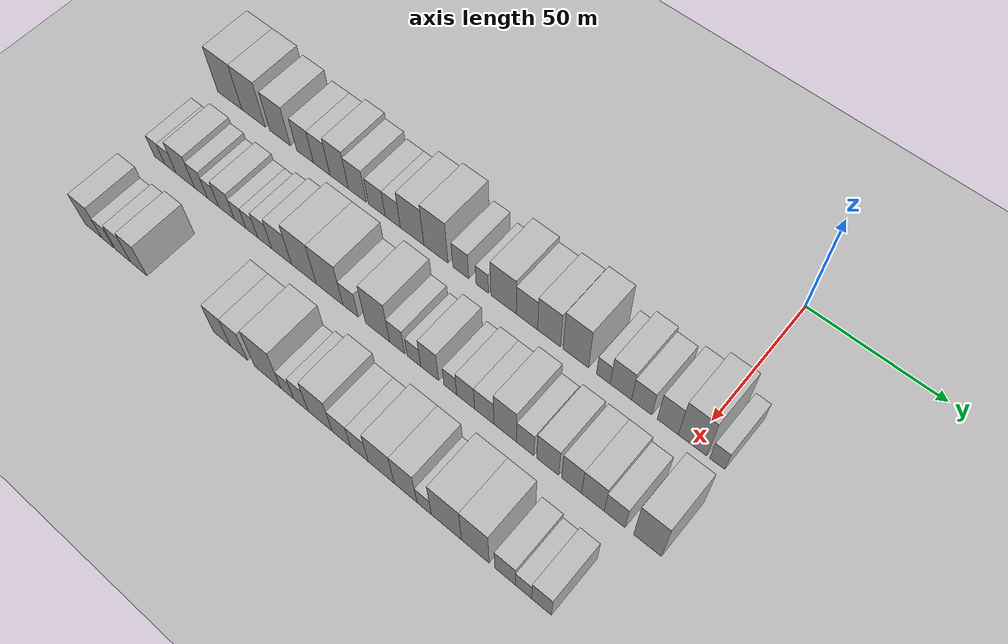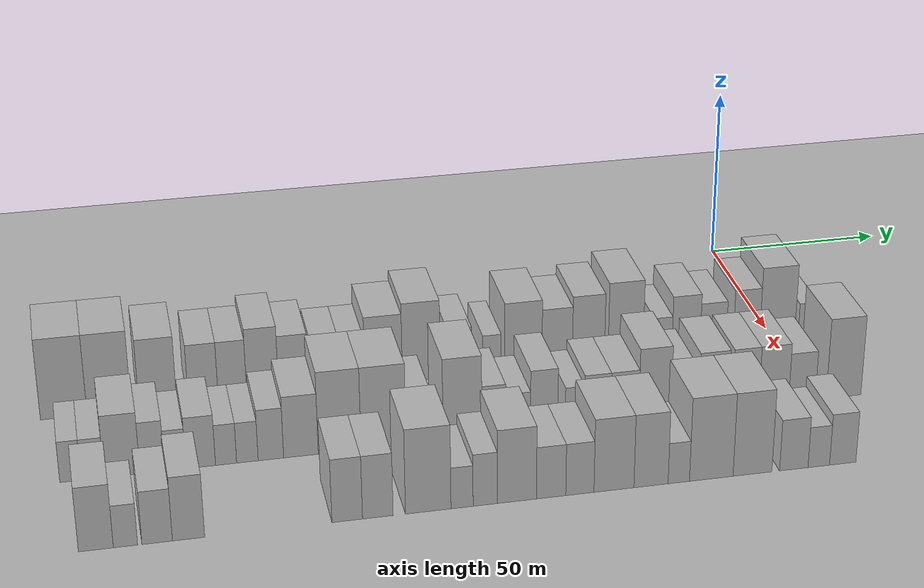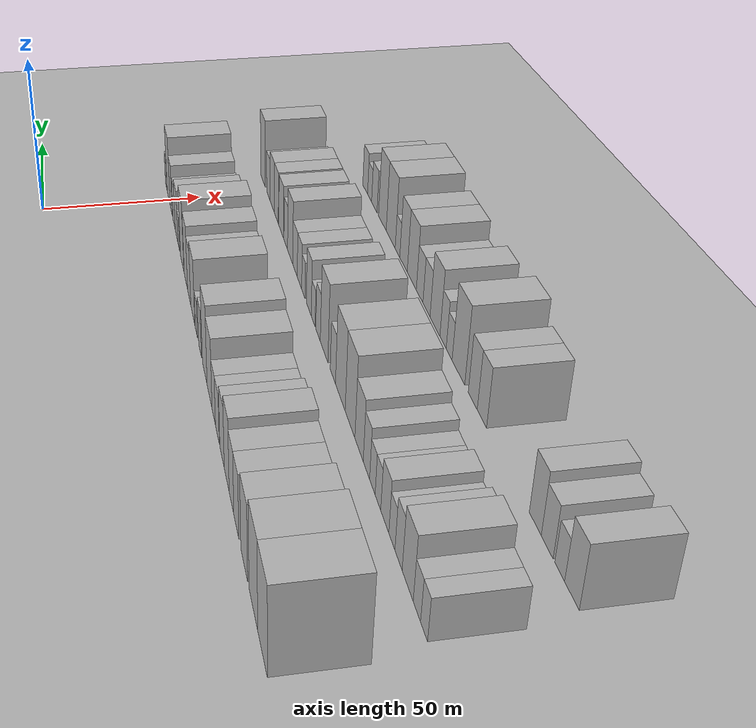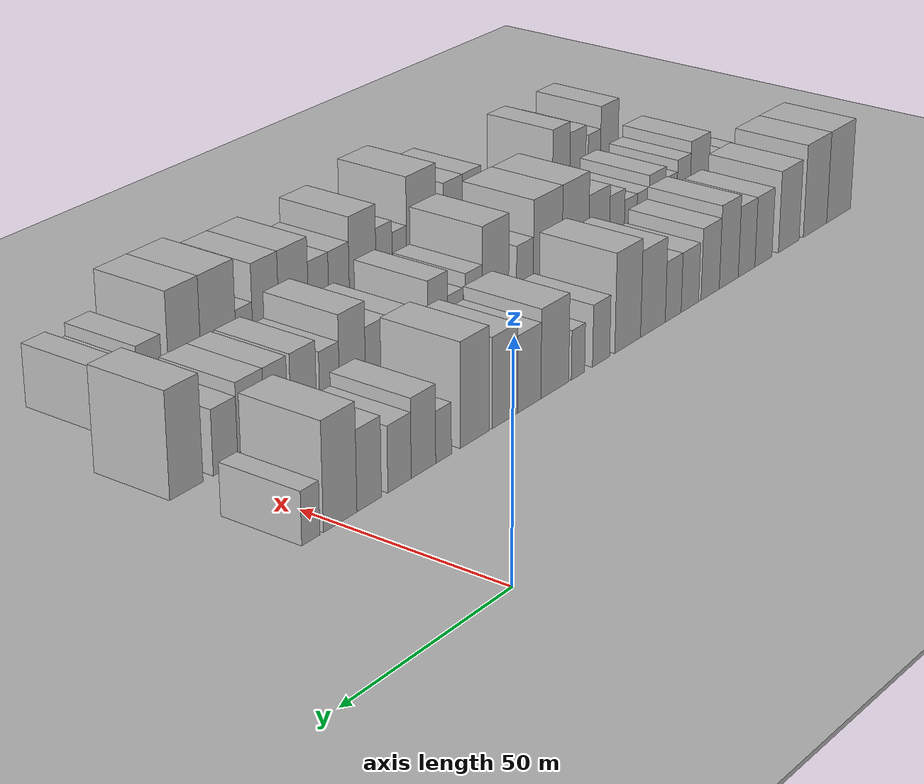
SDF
<sdf version="1.6">
 <world name="default">
  <include><name>ground_plane_1</name><uri>model://HANNAS_ground_plane</uri></include>
  <include>
   <name>ground_plane_2</name>
   <uri>model://HANNAS_ground_plane</uri>
   <pose>100 0 0  0 0 0</pose>
  </include>
  <model name="building_36">
   <static>1</static>
   <pose>50.0000 -193.8844 0 0.000000 0.000000 0.000000</pose>
   <link name="link">
    <pose>0 0 12.00 0 0 0</pose>
    <collision name="collision"><geometry><box><size>20.0000 11.9434 24.0000</size></box></geometry></collision>
    <visual name="visual">
     <cast_shadows>0</cast_shadows>
     <geometry><box><size>20.0000 11.9434 24.0000</size></box></geometry>
     <material>
      <script>
       <uri>model://HANNAS_wall/materials/scripts</uri>
       <uri>model://HANNAS_wall/materials/textures</uri>
       <name>vrc/HANNAS_wall</name>
      </script>
     </material>
    </visual>
   </link>
  </model>
  <model name="building_37">
   <static>1</static>
   <pose>50.0000 -182.1937 0 0.000000 0.000000 0.000000</pose>
   <link name="link">
    <pose>0 0 12.00 0 0 0</pose>
    <collision name="collision"><geometry><box><size>20.0000 11.4381 24.0000</size></box></geometry></collision>
    <visual name="visual">
     <cast_shadows>0</cast_shadows>
     <geometry><box><size>20.0000 11.4381 24.0000</size></box></geometry>
     <material>
      <script>
       <uri>model://HANNAS_wall/materials/scripts</uri>
       <uri>model://HANNAS_wall/materials/textures</uri>
       <name>vrc/HANNAS_wall</name>
      </script>
     </material>
    </visual>
   </link>
  </model>
  <model name="building_38">
   <static>1</static>
   <pose>50.0000 -169.5516 0 0.000000 0.000000 0.000000</pose>
   <link name="link">
    <pose>0 0 10.50 0 0 0</pose>
    <collision name="collision"><geometry><box><size>20.0000 9.8461 21.0000</size></box></geometry></collision>
    <visual name="visual">
     <cast_shadows>0</cast_shadows>
     <geometry><box><size>20.0000 9.8461 21.0000</size></box></geometry>
     <material>
      <script>
       <uri>model://HANNAS_wall/materials/scripts</uri>
       <uri>model://HANNAS_wall/materials/textures</uri>
       <name>vrc/HANNAS_wall</name>
      </script>
     </material>
    </visual>
   </link>
  </model>
  <model name="building_39">
   <static>1</static>
   <pose>50.0000 -157.7126 0 0.000000 0.000000 0.000000</pose>
   <link name="link">
    <pose>0 0 9.00 0 0 0</pose>
    <collision name="collision"><geometry><box><size>20.0000 7.8317 18.0000</size></box></geometry></collision>
    <visual name="visual">
     <cast_shadows>0</cast_shadows>
     <geometry><box><size>20.0000 7.8317 18.0000</size></box></geometry>
     <material>
      <script>
       <uri>model://HANNAS_wall/materials/scripts</uri>
       <uri>model://HANNAS_wall/materials/textures</uri>
       <name>vrc/HANNAS_wall</name>
      </script>
     </material>
    </visual>
   </link>
  </model>
  <model name="building_40">
   <static>1</static>
   <pose>50.0000 -150.0281 0 0.000000 0.000000 0.000000</pose>
   <link name="link">
    <pose>0 0 9.00 0 0 0</pose>
    <collision name="collision"><geometry><box><size>20.0000 7.5374 18.0000</size></box></geometry></collision>
    <visual name="visual">
     <cast_shadows>0</cast_shadows>
     <geometry><box><size>20.0000 7.5374 18.0000</size></box></geometry>
     <material>
      <script>
       <uri>model://HANNAS_wall/materials/scripts</uri>
       <uri>model://HANNAS_wall/materials/textures</uri>
       <name>vrc/HANNAS_wall</name>
      </script>
     </material>
    </visual>
   </link>
  </model>
  <model name="building_41">
   <static>1</static>
   <pose>50.0000 -142.0535 0 0.000000 0.000000 0.000000</pose>
   <link name="link">
    <pose>0 0 10.50 0 0 0</pose>
    <collision name="collision"><geometry><box><size>20.0000 8.4118 21.0000</size></box></geometry></collision>
    <visual name="visual">
     <cast_shadows>0</cast_shadows>
     <geometry><box><size>20.0000 8.4118 21.0000</size></box></geometry>
     <material>
      <script>
       <uri>model://HANNAS_wall/materials/scripts</uri>
       <uri>model://HANNAS_wall/materials/textures</uri>
       <name>vrc/HANNAS_wall</name>
      </script>
     </material>
    </visual>
   </link>
  </model>
  <model name="building_42">
   <static>1</static>
   <pose>50.0000 -133.8638 0 0.000000 0.000000 0.000000</pose>
   <link name="link">
    <pose>0 0 9.00 0 0 0</pose>
    <collision name="collision"><geometry><box><size>20.0000 7.9675 18.0000</size></box></geometry></collision>
    <visual name="visual">
     <cast_shadows>0</cast_shadows>
     <geometry><box><size>20.0000 7.9675 18.0000</size></box></geometry>
     <material>
      <script>
       <uri>model://HANNAS_wall/materials/scripts</uri>
       <uri>model://HANNAS_wall/materials/textures</uri>
       <name>vrc/HANNAS_wall</name>
      </script>
     </material>
    </visual>
   </link>
  </model>
  <model name="building_43">
   <static>1</static>
   <pose>50.0000 -125.1613 0 0.000000 0.000000 0.000000</pose>
   <link name="link">
    <pose>0 0 7.50 0 0 0</pose>
    <collision name="collision"><geometry><box><size>20.0000 7.4376 15.0000</size></box></geometry></collision>
    <visual name="visual">
     <cast_shadows>0</cast_shadows>
     <geometry><box><size>20.0000 7.4376 15.0000</size></box></geometry>
     <material>
      <script>
       <uri>model://HANNAS_wall/materials/scripts</uri>
       <uri>model://HANNAS_wall/materials/textures</uri>
       <name>vrc/HANNAS_wall</name>
      </script>
     </material>
    </visual>
   </link>
  </model>
  <model name="building_44">
   <static>1</static>
   <pose>50.0000 -118.1211 0 0.000000 0.000000 0.000000</pose>
   <link name="link">
    <pose>0 0 7.50 0 0 0</pose>
    <collision name="collision"><geometry><box><size>20.0000 6.6428 15.0000</size></box></geometry></collision>
    <visual name="visual">
     <cast_shadows>0</cast_shadows>
     <geometry><box><size>20.0000 6.6428 15.0000</size></box></geometry>
     <material>
      <script>
       <uri>model://HANNAS_wall/materials/scripts</uri>
       <uri>model://HANNAS_wall/materials/textures</uri>
       <name>vrc/HANNAS_wall</name>
      </script>
     </material>
    </visual>
   </link>
  </model>
  <model name="building_45">
   <static>1</static>
   <pose>50.0000 -109.7506 0 0.000000 0.000000 0.000000</pose>
   <link name="link">
    <pose>0 0 10.50 0 0 0</pose>
    <collision name="collision"><geometry><box><size>20.0000 10.0981 21.0000</size></box></geometry></collision>
    <visual name="visual">
     <cast_shadows>0</cast_shadows>
     <geometry><box><size>20.0000 10.0981 21.0000</size></box></geometry>
     <material>
      <script>
       <uri>model://HANNAS_wall/materials/scripts</uri>
       <uri>model://HANNAS_wall/materials/textures</uri>
       <name>vrc/HANNAS_wall</name>
      </script>
     </material>
    </visual>
   </link>
  </model>
  <model name="building_46">
   <static>1</static>
   <pose>50.0000 -99.5699 0 0.000000 0.000000 0.000000</pose>
   <link name="link">
    <pose>0 0 12.00 0 0 0</pose>
    <collision name="collision"><geometry><box><size>20.0000 10.2633 24.0000</size></box></geometry></collision>
    <visual name="visual">
     <cast_shadows>0</cast_shadows>
     <geometry><box><size>20.0000 10.2633 24.0000</size></box></geometry>
     <material>
      <script>
       <uri>model://HANNAS_wall/materials/scripts</uri>
       <uri>model://HANNAS_wall/materials/textures</uri>
       <name>vrc/HANNAS_wall</name>
      </script>
     </material>
    </visual>
   </link>
  </model>
  <model name="building_47">
   <static>1</static>
   <pose>50.0000 -89.1114 0 0.000000 0.000000 0.000000</pose>
   <link name="link">
    <pose>0 0 7.50 0 0 0</pose>
    <collision name="collision"><geometry><box><size>20.0000 6.6538 15.0000</size></box></geometry></collision>
    <visual name="visual">
     <cast_shadows>0</cast_shadows>
     <geometry><box><size>20.0000 6.6538 15.0000</size></box></geometry>
     <material>
      <script>
       <uri>model://HANNAS_wall/materials/scripts</uri>
       <uri>model://HANNAS_wall/materials/textures</uri>
       <name>vrc/HANNAS_wall</name>
      </script>
     </material>
    </visual>
   </link>
  </model>
  <model name="building_48">
   <static>1</static>
   <pose>50.0000 -80.2523 0 0.000000 0.000000 0.000000</pose>
   <link name="link">
    <pose>0 0 6.00 0 0 0</pose>
    <collision name="collision"><geometry><box><size>20.0000 5.0644 12.0000</size></box></geometry></collision>
    <visual name="visual">
     <cast_shadows>0</cast_shadows>
     <geometry><box><size>20.0000 5.0644 12.0000</size></box></geometry>
     <material>
      <script>
       <uri>model://HANNAS_wall/materials/scripts</uri>
       <uri>model://HANNAS_wall/materials/textures</uri>
       <name>vrc/HANNAS_wall</name>
      </script>
     </material>
    </visual>
   </link>
  </model>
  <model name="building_49">
   <static>1</static>
   <pose>50.0000 -71.5882 0 0.000000 0.000000 0.000000</pose>
   <link name="link">
    <pose>0 0 10.50 0 0 0</pose>
    <collision name="collision"><geometry><box><size>20.0000 10.2639 21.0000</size></box></geometry></collision>
    <visual name="visual">
     <cast_shadows>0</cast_shadows>
     <geometry><box><size>20.0000 10.2639 21.0000</size></box></geometry>
     <material>
      <script>
       <uri>model://HANNAS_wall/materials/scripts</uri>
       <uri>model://HANNAS_wall/materials/textures</uri>
       <name>vrc/HANNAS_wall</name>
      </script>
     </material>
    </visual>
   </link>
  </model>
  <model name="building_50">
   <static>1</static>
   <pose>50.0000 -62.2357 0 0.000000 0.000000 0.000000</pose>
   <link name="link">
    <pose>0 0 9.00 0 0 0</pose>
    <collision name="collision"><geometry><box><size>20.0000 8.4412 18.0000</size></box></geometry></collision>
    <visual name="visual">
     <cast_shadows>0</cast_shadows>
     <geometry><box><size>20.0000 8.4412 18.0000</size></box></geometry>
     <material>
      <script>
       <uri>model://HANNAS_wall/materials/scripts</uri>
       <uri>model://HANNAS_wall/materials/textures</uri>
       <name>vrc/HANNAS_wall</name>
      </script>
     </material>
    </visual>
   </link>
  </model>
  <model name="building_51">
   <static>1</static>
   <pose>50.0000 -53.5287 0 0.000000 0.000000 0.000000</pose>
   <link name="link">
    <pose>0 0 10.50 0 0 0</pose>
    <collision name="collision"><geometry><box><size>20.0000 8.9727 21.0000</size></box></geometry></collision>
    <visual name="visual">
     <cast_shadows>0</cast_shadows>
     <geometry><box><size>20.0000 8.9727 21.0000</size></box></geometry>
     <material>
      <script>
       <uri>model://HANNAS_wall/materials/scripts</uri>
       <uri>model://HANNAS_wall/materials/textures</uri>
       <name>vrc/HANNAS_wall</name>
      </script>
     </material>
    </visual>
   </link>
  </model>
  <model name="building_52">
   <static>1</static>
   <pose>50.0000 -43.1414 0 0.000000 0.000000 0.000000</pose>
   <link name="link">
    <pose>0 0 12.00 0 0 0</pose>
    <collision name="collision"><geometry><box><size>20.0000 9.8020 24.0000</size></box></geometry></collision>
    <visual name="visual">
     <cast_shadows>0</cast_shadows>
     <geometry><box><size>20.0000 9.8020 24.0000</size></box></geometry>
     <material>
      <script>
       <uri>model://HANNAS_wall/materials/scripts</uri>
       <uri>model://HANNAS_wall/materials/textures</uri>
       <name>vrc/HANNAS_wall</name>
      </script>
     </material>
    </visual>
   </link>
  </model>
  <model name="building_53">
   <static>1</static>
   <pose>50.0000 -32.6499 0 0.000000 0.000000 0.000000</pose>
   <link name="link">
    <pose>0 0 6.00 0 0 0</pose>
    <collision name="collision"><geometry><box><size>20.0000 5.1810 12.0000</size></box></geometry></collision>
    <visual name="visual">
     <cast_shadows>0</cast_shadows>
     <geometry><box><size>20.0000 5.1810 12.0000</size></box></geometry>
     <material>
      <script>
       <uri>model://HANNAS_wall/materials/scripts</uri>
       <uri>model://HANNAS_wall/materials/textures</uri>
       <name>vrc/HANNAS_wall</name>
      </script>
     </material>
    </visual>
   </link>
  </model>
  <model name="building_54">
   <static>1</static>
   <pose>50.0000 -26.0676 0 0.000000 0.000000 0.000000</pose>
   <link name="link">
    <pose>0 0 9.00 0 0 0</pose>
    <collision name="collision"><geometry><box><size>20.0000 7.9837 18.0000</size></box></geometry></collision>
    <visual name="visual">
     <cast_shadows>0</cast_shadows>
     <geometry><box><size>20.0000 7.9837 18.0000</size></box></geometry>
     <material>
      <script>
       <uri>model://HANNAS_wall/materials/scripts</uri>
       <uri>model://HANNAS_wall/materials/textures</uri>
       <name>vrc/HANNAS_wall</name>
      </script>
     </material>
    </visual>
   </link>
  </model>
  <model name="building_55">
   <static>1</static>
   <pose>50.0000 -18.3484 0 0.000000 0.000000 0.000000</pose>
   <link name="link">
    <pose>0 0 7.50 0 0 0</pose>
    <collision name="collision"><geometry><box><size>20.0000 7.4547 15.0000</size></box></geometry></collision>
    <visual name="visual">
     <cast_shadows>0</cast_shadows>
     <geometry><box><size>20.0000 7.4547 15.0000</size></box></geometry>
     <material>
      <script>
       <uri>model://HANNAS_wall/materials/scripts</uri>
       <uri>model://HANNAS_wall/materials/textures</uri>
       <name>vrc/HANNAS_wall</name>
      </script>
     </material>
    </visual>
   </link>
  </model>
  <model name="building_56">
   <static>1</static>
   <pose>50.0000 -8.8292 0 0.000000 0.000000 0.000000</pose>
   <link name="link">
    <pose>0 0 9.00 0 0 0</pose>
    <collision name="collision"><geometry><box><size>20.0000 7.5837 18.0000</size></box></geometry></collision>
    <visual name="visual">
     <cast_shadows>0</cast_shadows>
     <geometry><box><size>20.0000 7.5837 18.0000</size></box></geometry>
     <material>
      <script>
       <uri>model://HANNAS_wall/materials/scripts</uri>
       <uri>model://HANNAS_wall/materials/textures</uri>
       <name>vrc/HANNAS_wall</name>
      </script>
     </material>
    </visual>
   </link>
  </model>
  <model name="building_57">
   <static>1</static>
   <pose>50.0000 0.0270 0 0.000000 0.000000 0.000000</pose>
   <link name="link">
    <pose>0 0 12.00 0 0 0</pose>
    <collision name="collision"><geometry><box><size>20.0000 10.1287 24.0000</size></box></geometry></collision>
    <visual name="visual">
     <cast_shadows>0</cast_shadows>
     <geometry><box><size>20.0000 10.1287 24.0000</size></box></geometry>
     <material>
      <script>
       <uri>model://HANNAS_wall/materials/scripts</uri>
       <uri>model://HANNAS_wall/materials/textures</uri>
       <name>vrc/HANNAS_wall</name>
      </script>
     </material>
    </visual>
   </link>
  </model>
  <model name="building_58">
   <static>1</static>
   <pose>50.0000 8.7703 0 0.000000 0.000000 0.000000</pose>
   <link name="link">
    <pose>0 0 6.00 0 0 0</pose>
    <collision name="collision"><geometry><box><size>20.0000 5.3580 12.0000</size></box></geometry></collision>
    <visual name="visual">
     <cast_shadows>0</cast_shadows>
     <geometry><box><size>20.0000 5.3580 12.0000</size></box></geometry>
     <material>
      <script>
       <uri>model://HANNAS_wall/materials/scripts</uri>
       <uri>model://HANNAS_wall/materials/textures</uri>
       <name>vrc/HANNAS_wall</name>
      </script>
     </material>
    </visual>
   </link>
  </model>
  <model name="building_155">
   <static>1</static>
   <pose>82.0000 -193.5159 0 0.000000 0.000000 0.000000</pose>
   <link name="link">
    <pose>0 0 6.00 0 0 0</pose>
    <collision name="collision"><geometry><box><size>20.0000 5.1642 12.0000</size></box></geometry></collision>
    <visual name="visual">
     <cast_shadows>0</cast_shadows>
     <geometry><box><size>20.0000 5.1642 12.0000</size></box></geometry>
     <material>
      <script>
       <uri>model://HANNAS_wall/materials/scripts</uri>
       <uri>model://HANNAS_wall/materials/textures</uri>
       <name>vrc/HANNAS_wall</name>
      </script>
     </material>
    </visual>
   </link>
  </model>
  <model name="building_156">
   <static>1</static>
   <pose>82.0000 -188.1320 0 0.000000 0.000000 0.000000</pose>
   <link name="link">
    <pose>0 0 6.00 0 0 0</pose>
    <collision name="collision"><geometry><box><size>20.0000 5.6036 12.0000</size></box></geometry></collision>
    <visual name="visual">
     <cast_shadows>0</cast_shadows>
     <geometry><box><size>20.0000 5.6036 12.0000</size></box></geometry>
     <material>
      <script>
       <uri>model://HANNAS_wall/materials/scripts</uri>
       <uri>model://HANNAS_wall/materials/textures</uri>
       <name>vrc/HANNAS_wall</name>
      </script>
     </material>
    </visual>
   </link>
  </model>
  <model name="building_157">
   <static>1</static>
   <pose>82.0000 -180.8897 0 0.000000 0.000000 0.000000</pose>
   <link name="link">
    <pose>0 0 9.00 0 0 0</pose>
    <collision name="collision"><geometry><box><size>20.0000 8.8810 18.0000</size></box></geometry></collision>
    <visual name="visual">
     <cast_shadows>0</cast_shadows>
     <geometry><box><size>20.0000 8.8810 18.0000</size></box></geometry>
     <material>
      <script>
       <uri>model://HANNAS_wall/materials/scripts</uri>
       <uri>model://HANNAS_wall/materials/textures</uri>
       <name>vrc/HANNAS_wall</name>
      </script>
     </material>
    </visual>
   </link>
  </model>
  <model name="building_158">
   <static>1</static>
   <pose>82.0000 -173.4260 0 0.000000 0.000000 0.000000</pose>
   <link name="link">
    <pose>0 0 7.50 0 0 0</pose>
    <collision name="collision"><geometry><box><size>20.0000 6.0465 15.0000</size></box></geometry></collision>
    <visual name="visual">
     <cast_shadows>0</cast_shadows>
     <geometry><box><size>20.0000 6.0465 15.0000</size></box></geometry>
     <material>
      <script>
       <uri>model://HANNAS_wall/materials/scripts</uri>
       <uri>model://HANNAS_wall/materials/textures</uri>
       <name>vrc/HANNAS_wall</name>
      </script>
     </material>
    </visual>
   </link>
  </model>
  <model name="building_159">
   <static>1</static>
   <pose>82.0000 -167.7476 0 0.000000 0.000000 0.000000</pose>
   <link name="link">
    <pose>0 0 6.00 0 0 0</pose>
    <collision name="collision"><geometry><box><size>20.0000 5.3101 12.0000</size></box></geometry></collision>
    <visual name="visual">
     <cast_shadows>0</cast_shadows>
     <geometry><box><size>20.0000 5.3101 12.0000</size></box></geometry>
     <material>
      <script>
       <uri>model://HANNAS_wall/materials/scripts</uri>
       <uri>model://HANNAS_wall/materials/textures</uri>
       <name>vrc/HANNAS_wall</name>
      </script>
     </material>
    </visual>
   </link>
  </model>
  <model name="building_160">
   <static>1</static>
   <pose>82.0000 -161.4004 0 0.000000 0.000000 0.000000</pose>
   <link name="link">
    <pose>0 0 7.50 0 0 0</pose>
    <collision name="collision"><geometry><box><size>20.0000 7.3844 15.0000</size></box></geometry></collision>
    <visual name="visual">
     <cast_shadows>0</cast_shadows>
     <geometry><box><size>20.0000 7.3844 15.0000</size></box></geometry>
     <material>
      <script>
       <uri>model://HANNAS_wall/materials/scripts</uri>
       <uri>model://HANNAS_wall/materials/textures</uri>
       <name>vrc/HANNAS_wall</name>
      </script>
     </material>
    </visual>
   </link>
  </model>
  <model name="building_161">
   <static>1</static>
   <pose>82.0000 -155.0652 0 0.000000 0.000000 0.000000</pose>
   <link name="link">
    <pose>0 0 6.00 0 0 0</pose>
    <collision name="collision"><geometry><box><size>20.0000 5.2860 12.0000</size></box></geometry></collision>
    <visual name="visual">
     <cast_shadows>0</cast_shadows>
     <geometry><box><size>20.0000 5.2860 12.0000</size></box></geometry>
     <material>
      <script>
       <uri>model://HANNAS_wall/materials/scripts</uri>
       <uri>model://HANNAS_wall/materials/textures</uri>
       <name>vrc/HANNAS_wall</name>
      </script>
     </material>
    </visual>
   </link>
  </model>
  <model name="building_162">
   <static>1</static>
   <pose>82.0000 -149.7202 0 0.000000 0.000000 0.000000</pose>
   <link name="link">
    <pose>0 0 6.00 0 0 0</pose>
    <collision name="collision"><geometry><box><size>20.0000 5.4039 12.0000</size></box></geometry></collision>
    <visual name="visual">
     <cast_shadows>0</cast_shadows>
     <geometry><box><size>20.0000 5.4039 12.0000</size></box></geometry>
     <material>
      <script>
       <uri>model://HANNAS_wall/materials/scripts</uri>
       <uri>model://HANNAS_wall/materials/textures</uri>
       <name>vrc/HANNAS_wall</name>
      </script>
     </material>
    </visual>
   </link>
  </model>
  <model name="building_163">
   <static>1</static>
   <pose>82.0000 -143.7997 0 0.000000 0.000000 0.000000</pose>
   <link name="link">
    <pose>0 0 7.50 0 0 0</pose>
    <collision name="collision"><geometry><box><size>20.0000 6.4373 15.0000</size></box></geometry></collision>
    <visual name="visual">
     <cast_shadows>0</cast_shadows>
     <geometry><box><size>20.0000 6.4373 15.0000</size></box></geometry>
     <material>
      <script>
       <uri>model://HANNAS_wall/materials/scripts</uri>
       <uri>model://HANNAS_wall/materials/textures</uri>
       <name>vrc/HANNAS_wall</name>
      </script>
     </material>
    </visual>
   </link>
  </model>
  <model name="building_164">
   <static>1</static>
   <pose>82.0000 -136.1888 0 0.000000 0.000000 0.000000</pose>
   <link name="link">
    <pose>0 0 9.00 0 0 0</pose>
    <collision name="collision"><geometry><box><size>20.0000 8.7845 18.0000</size></box></geometry></collision>
    <visual name="visual">
     <cast_shadows>0</cast_shadows>
     <geometry><box><size>20.0000 8.7845 18.0000</size></box></geometry>
     <material>
      <script>
       <uri>model://HANNAS_wall/materials/scripts</uri>
       <uri>model://HANNAS_wall/materials/textures</uri>
       <name>vrc/HANNAS_wall</name>
      </script>
     </material>
    </visual>
   </link>
  </model>
  <model name="building_165">
   <static>1</static>
   <pose>82.0000 -126.3332 0 0.000000 0.000000 0.000000</pose>
   <link name="link">
    <pose>0 0 12.00 0 0 0</pose>
    <collision name="collision"><geometry><box><size>20.0000 10.9266 24.0000</size></box></geometry></collision>
    <visual name="visual">
     <cast_shadows>0</cast_shadows>
     <geometry><box><size>20.0000 10.9266 24.0000</size></box></geometry>
     <material>
      <script>
       <uri>model://HANNAS_wall/materials/scripts</uri>
       <uri>model://HANNAS_wall/materials/textures</uri>
       <name>vrc/HANNAS_wall</name>
      </script>
     </material>
    </visual>
   </link>
  </model>
  <model name="building_166">
   <static>1</static>
   <pose>82.0000 -115.1122 0 0.000000 0.000000 0.000000</pose>
   <link name="link">
    <pose>0 0 12.00 0 0 0</pose>
    <collision name="collision"><geometry><box><size>20.0000 11.5154 24.0000</size></box></geometry></collision>
    <visual name="visual">
     <cast_shadows>0</cast_shadows>
     <geometry><box><size>20.0000 11.5154 24.0000</size></box></geometry>
     <material>
      <script>
       <uri>model://HANNAS_wall/materials/scripts</uri>
       <uri>model://HANNAS_wall/materials/textures</uri>
       <name>vrc/HANNAS_wall</name>
      </script>
     </material>
    </visual>
   </link>
  </model>
  <model name="building_167">
   <static>1</static>
   <pose>82.0000 -106.0651 0 0.000000 0.000000 0.000000</pose>
   <link name="link">
    <pose>0 0 7.50 0 0 0</pose>
    <collision name="collision"><geometry><box><size>20.0000 6.5788 15.0000</size></box></geometry></collision>
    <visual name="visual">
     <cast_shadows>0</cast_shadows>
     <geometry><box><size>20.0000 6.5788 15.0000</size></box></geometry>
     <material>
      <script>
       <uri>model://HANNAS_wall/materials/scripts</uri>
       <uri>model://HANNAS_wall/materials/textures</uri>
       <name>vrc/HANNAS_wall</name>
      </script>
     </material>
    </visual>
   </link>
  </model>
  <model name="building_168">
   <static>1</static>
   <pose>82.0000 -94.7246 0 0.000000 0.000000 0.000000</pose>
   <link name="link">
    <pose>0 0 12.00 0 0 0</pose>
    <collision name="collision"><geometry><box><size>20.0000 10.1022 24.0000</size></box></geometry></collision>
    <visual name="visual">
     <cast_shadows>0</cast_shadows>
     <geometry><box><size>20.0000 10.1022 24.0000</size></box></geometry>
     <material>
      <script>
       <uri>model://HANNAS_wall/materials/scripts</uri>
       <uri>model://HANNAS_wall/materials/textures</uri>
       <name>vrc/HANNAS_wall</name>
      </script>
     </material>
    </visual>
   </link>
  </model>
  <model name="building_169">
   <static>1</static>
   <pose>82.0000 -86.5748 0 0.000000 0.000000 0.000000</pose>
   <link name="link">
    <pose>0 0 7.50 0 0 0</pose>
    <collision name="collision"><geometry><box><size>20.0000 6.1973 15.0000</size></box></geometry></collision>
    <visual name="visual">
     <cast_shadows>0</cast_shadows>
     <geometry><box><size>20.0000 6.1973 15.0000</size></box></geometry>
     <material>
      <script>
       <uri>model://HANNAS_wall/materials/scripts</uri>
       <uri>model://HANNAS_wall/materials/textures</uri>
       <name>vrc/HANNAS_wall</name>
      </script>
     </material>
    </visual>
   </link>
  </model>
  <model name="building_170">
   <static>1</static>
   <pose>82.0000 -79.7055 0 0.000000 0.000000 0.000000</pose>
   <link name="link">
    <pose>0 0 6.00 0 0 0</pose>
    <collision name="collision"><geometry><box><size>20.0000 5.5413 12.0000</size></box></geometry></collision>
    <visual name="visual">
     <cast_shadows>0</cast_shadows>
     <geometry><box><size>20.0000 5.5413 12.0000</size></box></geometry>
     <material>
      <script>
       <uri>model://HANNAS_wall/materials/scripts</uri>
       <uri>model://HANNAS_wall/materials/textures</uri>
       <name>vrc/HANNAS_wall</name>
      </script>
     </material>
    </visual>
   </link>
  </model>
  <model name="building_171">
   <static>1</static>
   <pose>82.0000 -73.3323 0 0.000000 0.000000 0.000000</pose>
   <link name="link">
    <pose>0 0 9.00 0 0 0</pose>
    <collision name="collision"><geometry><box><size>20.0000 7.2050 18.0000</size></box></geometry></collision>
    <visual name="visual">
     <cast_shadows>0</cast_shadows>
     <geometry><box><size>20.0000 7.2050 18.0000</size></box></geometry>
     <material>
      <script>
       <uri>model://HANNAS_wall/materials/scripts</uri>
       <uri>model://HANNAS_wall/materials/textures</uri>
       <name>vrc/HANNAS_wall</name>
      </script>
     </material>
    </visual>
   </link>
  </model>
  <model name="building_172">
   <static>1</static>
   <pose>82.0000 -65.1794 0 0.000000 0.000000 0.000000</pose>
   <link name="link">
    <pose>0 0 6.00 0 0 0</pose>
    <collision name="collision"><geometry><box><size>20.0000 5.1008 12.0000</size></box></geometry></collision>
    <visual name="visual">
     <cast_shadows>0</cast_shadows>
     <geometry><box><size>20.0000 5.1008 12.0000</size></box></geometry>
     <material>
      <script>
       <uri>model://HANNAS_wall/materials/scripts</uri>
       <uri>model://HANNAS_wall/materials/textures</uri>
       <name>vrc/HANNAS_wall</name>
      </script>
     </material>
    </visual>
   </link>
  </model>
  <model name="building_173">
   <static>1</static>
   <pose>82.0000 -59.1339 0 0.000000 0.000000 0.000000</pose>
   <link name="link">
    <pose>0 0 7.50 0 0 0</pose>
    <collision name="collision"><geometry><box><size>20.0000 6.9902 15.0000</size></box></geometry></collision>
    <visual name="visual">
     <cast_shadows>0</cast_shadows>
     <geometry><box><size>20.0000 6.9902 15.0000</size></box></geometry>
     <material>
      <script>
       <uri>model://HANNAS_wall/materials/scripts</uri>
       <uri>model://HANNAS_wall/materials/textures</uri>
       <name>vrc/HANNAS_wall</name>
      </script>
     </material>
    </visual>
   </link>
  </model>
  <model name="building_174">
   <static>1</static>
   <pose>82.0000 -51.8982 0 0.000000 0.000000 0.000000</pose>
   <link name="link">
    <pose>0 0 7.50 0 0 0</pose>
    <collision name="collision"><geometry><box><size>20.0000 7.4813 15.0000</size></box></geometry></collision>
    <visual name="visual">
     <cast_shadows>0</cast_shadows>
     <geometry><box><size>20.0000 7.4813 15.0000</size></box></geometry>
     <material>
      <script>
       <uri>model://HANNAS_wall/materials/scripts</uri>
       <uri>model://HANNAS_wall/materials/textures</uri>
       <name>vrc/HANNAS_wall</name>
      </script>
     </material>
    </visual>
   </link>
  </model>
  <model name="building_175">
   <static>1</static>
   <pose>82.0000 -43.8235 0 0.000000 0.000000 0.000000</pose>
   <link name="link">
    <pose>0 0 10.50 0 0 0</pose>
    <collision name="collision"><geometry><box><size>20.0000 8.6681 21.0000</size></box></geometry></collision>
    <visual name="visual">
     <cast_shadows>0</cast_shadows>
     <geometry><box><size>20.0000 8.6681 21.0000</size></box></geometry>
     <material>
      <script>
       <uri>model://HANNAS_wall/materials/scripts</uri>
       <uri>model://HANNAS_wall/materials/textures</uri>
       <name>vrc/HANNAS_wall</name>
      </script>
     </material>
    </visual>
   </link>
  </model>
  <model name="building_176">
   <static>1</static>
   <pose>82.0000 -36.2660 0 0.000000 0.000000 0.000000</pose>
   <link name="link">
    <pose>0 0 7.50 0 0 0</pose>
    <collision name="collision"><geometry><box><size>20.0000 6.4470 15.0000</size></box></geometry></collision>
    <visual name="visual">
     <cast_shadows>0</cast_shadows>
     <geometry><box><size>20.0000 6.4470 15.0000</size></box></geometry>
     <material>
      <script>
       <uri>model://HANNAS_wall/materials/scripts</uri>
       <uri>model://HANNAS_wall/materials/textures</uri>
       <name>vrc/HANNAS_wall</name>
      </script>
     </material>
    </visual>
   </link>
  </model>
  <model name="building_177">
   <static>1</static>
   <pose>82.0000 -27.9535 0 0.000000 0.000000 0.000000</pose>
   <link name="link">
    <pose>0 0 9.00 0 0 0</pose>
    <collision name="collision"><geometry><box><size>20.0000 8.1780 18.0000</size></box></geometry></collision>
    <visual name="visual">
     <cast_shadows>0</cast_shadows>
     <geometry><box><size>20.0000 8.1780 18.0000</size></box></geometry>
     <material>
      <script>
       <uri>model://HANNAS_wall/materials/scripts</uri>
       <uri>model://HANNAS_wall/materials/textures</uri>
       <name>vrc/HANNAS_wall</name>
      </script>
     </material>
    </visual>
   </link>
  </model>
  <model name="building_178">
   <static>1</static>
   <pose>82.0000 -19.2156 0 0.000000 0.000000 0.000000</pose>
   <link name="link">
    <pose>0 0 9.00 0 0 0</pose>
    <collision name="collision"><geometry><box><size>20.0000 7.2979 18.0000</size></box></geometry></collision>
    <visual name="visual">
     <cast_shadows>0</cast_shadows>
     <geometry><box><size>20.0000 7.2979 18.0000</size></box></geometry>
     <material>
      <script>
       <uri>model://HANNAS_wall/materials/scripts</uri>
       <uri>model://HANNAS_wall/materials/textures</uri>
       <name>vrc/HANNAS_wall</name>
      </script>
     </material>
    </visual>
   </link>
  </model>
  <model name="building_179">
   <static>1</static>
   <pose>82.0000 -11.4724 0 0.000000 0.000000 0.000000</pose>
   <link name="link">
    <pose>0 0 9.00 0 0 0</pose>
    <collision name="collision"><geometry><box><size>20.0000 8.1885 18.0000</size></box></geometry></collision>
    <visual name="visual">
     <cast_shadows>0</cast_shadows>
     <geometry><box><size>20.0000 8.1885 18.0000</size></box></geometry>
     <material>
      <script>
       <uri>model://HANNAS_wall/materials/scripts</uri>
       <uri>model://HANNAS_wall/materials/textures</uri>
       <name>vrc/HANNAS_wall</name>
      </script>
     </material>
    </visual>
   </link>
  </model>
  <model name="building_180">
   <static>1</static>
   <pose>82.0000 -3.6989 0 0.000000 0.000000 0.000000</pose>
   <link name="link">
    <pose>0 0 7.50 0 0 0</pose>
    <collision name="collision"><geometry><box><size>20.0000 7.3584 15.0000</size></box></geometry></collision>
    <visual name="visual">
     <cast_shadows>0</cast_shadows>
     <geometry><box><size>20.0000 7.3584 15.0000</size></box></geometry>
     <material>
      <script>
       <uri>model://HANNAS_wall/materials/scripts</uri>
       <uri>model://HANNAS_wall/materials/textures</uri>
       <name>vrc/HANNAS_wall</name>
      </script>
     </material>
    </visual>
   </link>
  </model>
  <model name="building_181">
   <static>1</static>
   <pose>82.0000 7.8106 0 0.000000 0.000000 0.000000</pose>
   <link name="link">
    <pose>0 0 12.00 0 0 0</pose>
    <collision name="collision"><geometry><box><size>20.0000 9.6605 24.0000</size></box></geometry></collision>
    <visual name="visual">
     <cast_shadows>0</cast_shadows>
     <geometry><box><size>20.0000 9.6605 24.0000</size></box></geometry>
     <material>
      <script>
       <uri>model://HANNAS_wall/materials/scripts</uri>
       <uri>model://HANNAS_wall/materials/textures</uri>
       <name>vrc/HANNAS_wall</name>
      </script>
     </material>
    </visual>
   </link>
  </model>
  <model name="building_280">
   <static>1</static>
   <pose>114.0000 -188.9431 0 0.000000 0.000000 0.000000</pose>
   <link name="link">
    <pose>0 0 9.00 0 0 0</pose>
    <collision name="collision"><geometry><box><size>20.0000 8.1288 18.0000</size></box></geometry></collision>
    <visual name="visual">
     <cast_shadows>0</cast_shadows>
     <geometry><box><size>20.0000 8.1288 18.0000</size></box></geometry>
     <material>
      <script>
       <uri>model://HANNAS_wall/materials/scripts</uri>
       <uri>model://HANNAS_wall/materials/textures</uri>
       <name>vrc/HANNAS_wall</name>
      </script>
     </material>
    </visual>
   </link>
  </model>
  <model name="building_281">
   <static>1</static>
   <pose>114.0000 -182.0448 0 0.000000 0.000000 0.000000</pose>
   <link name="link">
    <pose>0 0 6.00 0 0 0</pose>
    <collision name="collision"><geometry><box><size>20.0000 5.6677 12.0000</size></box></geometry></collision>
    <visual name="visual">
     <cast_shadows>0</cast_shadows>
     <geometry><box><size>20.0000 5.6677 12.0000</size></box></geometry>
     <material>
      <script>
       <uri>model://HANNAS_wall/materials/scripts</uri>
       <uri>model://HANNAS_wall/materials/textures</uri>
       <name>vrc/HANNAS_wall</name>
      </script>
     </material>
    </visual>
   </link>
  </model>
  <model name="building_282">
   <static>1</static>
   <pose>114.0000 -174.6232 0 0.000000 0.000000 0.000000</pose>
   <link name="link">
    <pose>0 0 7.50 0 0 0</pose>
    <collision name="collision"><geometry><box><size>20.0000 7.1756 15.0000</size></box></geometry></collision>
    <visual name="visual">
     <cast_shadows>0</cast_shadows>
     <geometry><box><size>20.0000 7.1756 15.0000</size></box></geometry>
     <material>
      <script>
       <uri>model://HANNAS_wall/materials/scripts</uri>
       <uri>model://HANNAS_wall/materials/textures</uri>
       <name>vrc/HANNAS_wall</name>
      </script>
     </material>
    </visual>
   </link>
  </model>
  <model name="building_283">
   <static>1</static>
   <pose>114.0000 -167.2293 0 0.000000 0.000000 0.000000</pose>
   <link name="link">
    <pose>0 0 9.00 0 0 0</pose>
    <collision name="collision"><geometry><box><size>20.0000 7.6121 18.0000</size></box></geometry></collision>
    <visual name="visual">
     <cast_shadows>0</cast_shadows>
     <geometry><box><size>20.0000 7.6121 18.0000</size></box></geometry>
     <material>
      <script>
       <uri>model://HANNAS_wall/materials/scripts</uri>
       <uri>model://HANNAS_wall/materials/textures</uri>
       <name>vrc/HANNAS_wall</name>
      </script>
     </material>
    </visual>
   </link>
  </model>
  <model name="building_284">
   <static>1</static>
   <pose>114.0000 -129.2963 0 0.000000 0.000000 0.000000</pose>
   <link name="link">
    <pose>0 0 9.00 0 0 0</pose>
    <collision name="collision"><geometry><box><size>20.0000 7.4180 18.0000</size></box></geometry></collision>
    <visual name="visual">
     <cast_shadows>0</cast_shadows>
     <geometry><box><size>20.0000 7.4180 18.0000</size></box></geometry>
     <material>
      <script>
       <uri>model://HANNAS_wall/materials/scripts</uri>
       <uri>model://HANNAS_wall/materials/textures</uri>
       <name>vrc/HANNAS_wall</name>
      </script>
     </material>
    </visual>
   </link>
  </model>
  <model name="building_285">
   <static>1</static>
   <pose>114.0000 -121.8558 0 0.000000 0.000000 0.000000</pose>
   <link name="link">
    <pose>0 0 9.00 0 0 0</pose>
    <collision name="collision"><geometry><box><size>20.0000 7.4631 18.0000</size></box></geometry></collision>
    <visual name="visual">
     <cast_shadows>0</cast_shadows>
     <geometry><box><size>20.0000 7.4631 18.0000</size></box></geometry>
     <material>
      <script>
       <uri>model://HANNAS_wall/materials/scripts</uri>
       <uri>model://HANNAS_wall/materials/textures</uri>
       <name>vrc/HANNAS_wall</name>
      </script>
     </material>
    </visual>
   </link>
  </model>
  <model name="building_286">
   <static>1</static>
   <pose>114.0000 -109.5274 0 0.000000 0.000000 0.000000</pose>
   <link name="link">
    <pose>0 0 12.00 0 0 0</pose>
    <collision name="collision"><geometry><box><size>20.0000 11.1936 24.0000</size></box></geometry></collision>
    <visual name="visual">
     <cast_shadows>0</cast_shadows>
     <geometry><box><size>20.0000 11.1936 24.0000</size></box></geometry>
     <material>
      <script>
       <uri>model://HANNAS_wall/materials/scripts</uri>
       <uri>model://HANNAS_wall/materials/textures</uri>
       <name>vrc/HANNAS_wall</name>
      </script>
     </material>
    </visual>
   </link>
  </model>
  <model name="building_287">
   <static>1</static>
   <pose>114.0000 -101.1994 0 0.000000 0.000000 0.000000</pose>
   <link name="link">
    <pose>0 0 6.00 0 0 0</pose>
    <collision name="collision"><geometry><box><size>20.0000 5.4625 12.0000</size></box></geometry></collision>
    <visual name="visual">
     <cast_shadows>0</cast_shadows>
     <geometry><box><size>20.0000 5.4625 12.0000</size></box></geometry>
     <material>
      <script>
       <uri>model://HANNAS_wall/materials/scripts</uri>
       <uri>model://HANNAS_wall/materials/textures</uri>
       <name>vrc/HANNAS_wall</name>
      </script>
     </material>
    </visual>
   </link>
  </model>
  <model name="building_288">
   <static>1</static>
   <pose>114.0000 -95.4665 0 0.000000 0.000000 0.000000</pose>
   <link name="link">
    <pose>0 0 7.50 0 0 0</pose>
    <collision name="collision"><geometry><box><size>20.0000 6.0031 15.0000</size></box></geometry></collision>
    <visual name="visual">
     <cast_shadows>0</cast_shadows>
     <geometry><box><size>20.0000 6.0031 15.0000</size></box></geometry>
     <material>
      <script>
       <uri>model://HANNAS_wall/materials/scripts</uri>
       <uri>model://HANNAS_wall/materials/textures</uri>
       <name>vrc/HANNAS_wall</name>
      </script>
     </material>
    </visual>
   </link>
  </model>
  <model name="building_289">
   <static>1</static>
   <pose>114.0000 -87.5778 0 0.000000 0.000000 0.000000</pose>
   <link name="link">
    <pose>0 0 10.50 0 0 0</pose>
    <collision name="collision"><geometry><box><size>20.0000 9.7743 21.0000</size></box></geometry></collision>
    <visual name="visual">
     <cast_shadows>0</cast_shadows>
     <geometry><box><size>20.0000 9.7743 21.0000</size></box></geometry>
     <material>
      <script>
       <uri>model://HANNAS_wall/materials/scripts</uri>
       <uri>model://HANNAS_wall/materials/textures</uri>
       <name>vrc/HANNAS_wall</name>
      </script>
     </material>
    </visual>
   </link>
  </model>
  <model name="building_290">
   <static>1</static>
   <pose>114.0000 -79.0157 0 0.000000 0.000000 0.000000</pose>
   <link name="link">
    <pose>0 0 7.50 0 0 0</pose>
    <collision name="collision"><geometry><box><size>20.0000 7.3500 15.0000</size></box></geometry></collision>
    <visual name="visual">
     <cast_shadows>0</cast_shadows>
     <geometry><box><size>20.0000 7.3500 15.0000</size></box></geometry>
     <material>
      <script>
       <uri>model://HANNAS_wall/materials/scripts</uri>
       <uri>model://HANNAS_wall/materials/textures</uri>
       <name>vrc/HANNAS_wall</name>
      </script>
     </material>
    </visual>
   </link>
  </model>
  <model name="building_291">
   <static>1</static>
   <pose>114.0000 -71.7936 0 0.000000 0.000000 0.000000</pose>
   <link name="link">
    <pose>0 0 7.50 0 0 0</pose>
    <collision name="collision"><geometry><box><size>20.0000 7.0943 15.0000</size></box></geometry></collision>
    <visual name="visual">
     <cast_shadows>0</cast_shadows>
     <geometry><box><size>20.0000 7.0943 15.0000</size></box></geometry>
     <material>
      <script>
       <uri>model://HANNAS_wall/materials/scripts</uri>
       <uri>model://HANNAS_wall/materials/textures</uri>
       <name>vrc/HANNAS_wall</name>
      </script>
     </material>
    </visual>
   </link>
  </model>
  <model name="building_292">
   <static>1</static>
   <pose>114.0000 -63.1746 0 0.000000 0.000000 0.000000</pose>
   <link name="link">
    <pose>0 0 10.50 0 0 0</pose>
    <collision name="collision"><geometry><box><size>20.0000 10.1437 21.0000</size></box></geometry></collision>
    <visual name="visual">
     <cast_shadows>0</cast_shadows>
     <geometry><box><size>20.0000 10.1437 21.0000</size></box></geometry>
     <material>
      <script>
       <uri>model://HANNAS_wall/materials/scripts</uri>
       <uri>model://HANNAS_wall/materials/textures</uri>
       <name>vrc/HANNAS_wall</name>
      </script>
     </material>
    </visual>
   </link>
  </model>
  <model name="building_293">
   <static>1</static>
   <pose>114.0000 -53.7460 0 0.000000 0.000000 0.000000</pose>
   <link name="link">
    <pose>0 0 10.50 0 0 0</pose>
    <collision name="collision"><geometry><box><size>20.0000 8.7136 21.0000</size></box></geometry></collision>
    <visual name="visual">
     <cast_shadows>0</cast_shadows>
     <geometry><box><size>20.0000 8.7136 21.0000</size></box></geometry>
     <material>
      <script>
       <uri>model://HANNAS_wall/materials/scripts</uri>
       <uri>model://HANNAS_wall/materials/textures</uri>
       <name>vrc/HANNAS_wall</name>
      </script>
     </material>
    </visual>
   </link>
  </model>
  <model name="building_294">
   <static>1</static>
   <pose>114.0000 -46.6439 0 0.000000 0.000000 0.000000</pose>
   <link name="link">
    <pose>0 0 6.00 0 0 0</pose>
    <collision name="collision"><geometry><box><size>20.0000 5.4905 12.0000</size></box></geometry></collision>
    <visual name="visual">
     <cast_shadows>0</cast_shadows>
     <geometry><box><size>20.0000 5.4905 12.0000</size></box></geometry>
     <material>
      <script>
       <uri>model://HANNAS_wall/materials/scripts</uri>
       <uri>model://HANNAS_wall/materials/textures</uri>
       <name>vrc/HANNAS_wall</name>
      </script>
     </material>
    </visual>
   </link>
  </model>
  <model name="building_295">
   <static>1</static>
   <pose>114.0000 -38.2753 0 0.000000 0.000000 0.000000</pose>
   <link name="link">
    <pose>0 0 12.00 0 0 0</pose>
    <collision name="collision"><geometry><box><size>20.0000 11.2466 24.0000</size></box></geometry></collision>
    <visual name="visual">
     <cast_shadows>0</cast_shadows>
     <geometry><box><size>20.0000 11.2466 24.0000</size></box></geometry>
     <material>
      <script>
       <uri>model://HANNAS_wall/materials/scripts</uri>
       <uri>model://HANNAS_wall/materials/textures</uri>
       <name>vrc/HANNAS_wall</name>
      </script>
     </material>
    </visual>
   </link>
  </model>
  <model name="building_296">
   <static>1</static>
   <pose>114.0000 -27.6060 0 0.000000 0.000000 0.000000</pose>
   <link name="link">
    <pose>0 0 12.00 0 0 0</pose>
    <collision name="collision"><geometry><box><size>20.0000 10.0921 24.0000</size></box></geometry></collision>
    <visual name="visual">
     <cast_shadows>0</cast_shadows>
     <geometry><box><size>20.0000 10.0921 24.0000</size></box></geometry>
     <material>
      <script>
       <uri>model://HANNAS_wall/materials/scripts</uri>
       <uri>model://HANNAS_wall/materials/textures</uri>
       <name>vrc/HANNAS_wall</name>
      </script>
     </material>
    </visual>
   </link>
  </model>
  <model name="building_297">
   <static>1</static>
   <pose>114.0000 -16.8384 0 0.000000 0.000000 0.000000</pose>
   <link name="link">
    <pose>0 0 7.50 0 0 0</pose>
    <collision name="collision"><geometry><box><size>20.0000 7.4430 15.0000</size></box></geometry></collision>
    <visual name="visual">
     <cast_shadows>0</cast_shadows>
     <geometry><box><size>20.0000 7.4430 15.0000</size></box></geometry>
     <material>
      <script>
       <uri>model://HANNAS_wall/materials/scripts</uri>
       <uri>model://HANNAS_wall/materials/textures</uri>
       <name>vrc/HANNAS_wall</name>
      </script>
     </material>
    </visual>
   </link>
  </model>
  <model name="building_298">
   <static>1</static>
   <pose>114.0000 -10.2827 0 0.000000 0.000000 0.000000</pose>
   <link name="link">
    <pose>0 0 6.00 0 0 0</pose>
    <collision name="collision"><geometry><box><size>20.0000 5.6685 12.0000</size></box></geometry></collision>
    <visual name="visual">
     <cast_shadows>0</cast_shadows>
     <geometry><box><size>20.0000 5.6685 12.0000</size></box></geometry>
     <material>
      <script>
       <uri>model://HANNAS_wall/materials/scripts</uri>
       <uri>model://HANNAS_wall/materials/textures</uri>
       <name>vrc/HANNAS_wall</name>
      </script>
     </material>
    </visual>
   </link>
  </model>
  <model name="building_299">
   <static>1</static>
   <pose>114.0000 -3.9795 0 0.000000 0.000000 0.000000</pose>
   <link name="link">
    <pose>0 0 7.50 0 0 0</pose>
    <collision name="collision"><geometry><box><size>20.0000 6.9378 15.0000</size></box></geometry></collision>
    <visual name="visual">
     <cast_shadows>0</cast_shadows>
     <geometry><box><size>20.0000 6.9378 15.0000</size></box></geometry>
     <material>
      <script>
       <uri>model://HANNAS_wall/materials/scripts</uri>
       <uri>model://HANNAS_wall/materials/textures</uri>
       <name>vrc/HANNAS_wall</name>
      </script>
     </material>
    </visual>
   </link>
  </model>
 </world>
</sdf>
